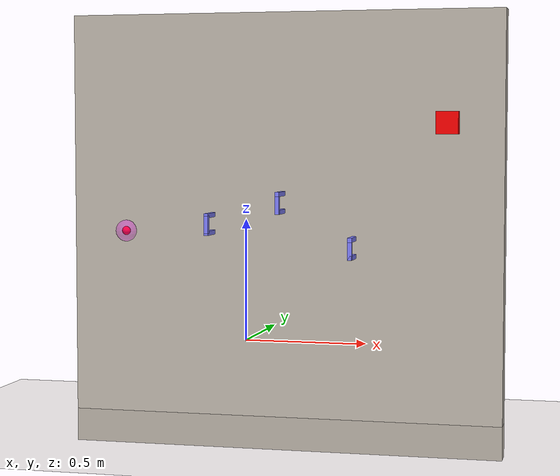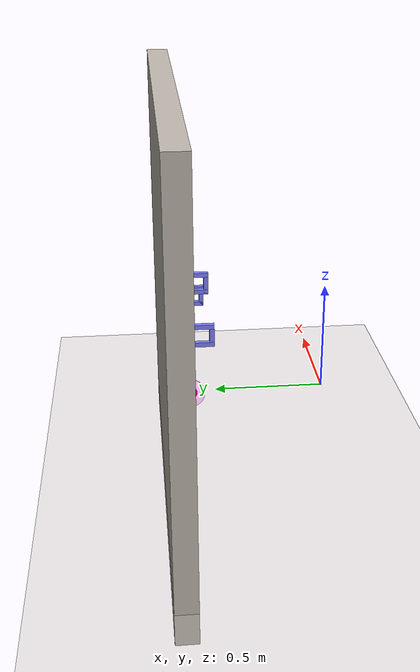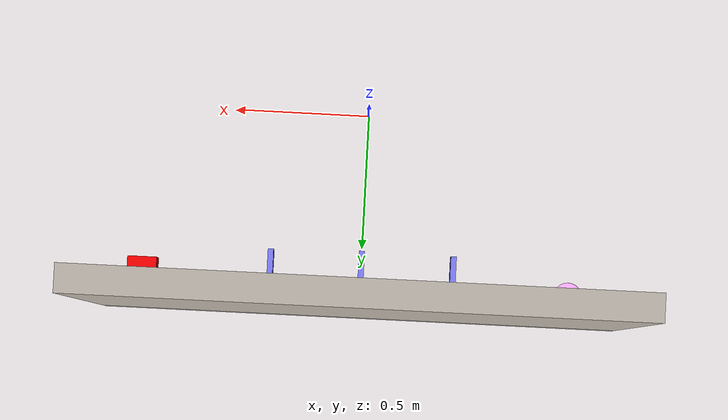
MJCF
<mujoco model="threading_scene">
    <compiler angle="radian" meshdir="meshes/" inertiafromgeom="true"/>
    <default>
        <default class="visual">
            <geom contype="0" conaffinity="0" group="2"/>
        </default>
    </default>
    <include file="materials.xml"/>
    <include file="cc_sphere.xml"/>
    <include file="floor.xml"/>
    <include file="threading_obstacles.xml"/>
</mujoco>

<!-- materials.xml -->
<mujocoinclude>
    <asset>
        <texture file="textures/light-wood.png" type="2d" name="tex-light-wood"/>
        <texture file="textures/dark-wood.png" type="2d" name="tex-dark-wood"/>
        <texture file="textures/metal.png" type="2d" name="tex-metal"/>
        <texture file="textures/cream-plaster.png" type="2d" name="tex-cream-plaster"/>
        <texture file="textures/grass.png" type="2d" name="tex-grass"/>
        <material name="light-wood" reflectance="0" texrepeat="15 15" texture="tex-light-wood" texuniform="true"/>
        <material name="dark-wood" reflectance="0" texrepeat="5 5" texture="tex-dark-wood" texuniform="true"/>
        <material name="metal" reflectance="0" texrepeat="5 5" texture="tex-metal" texuniform="true"/>
        <material name="cream-plaster" reflectance="0" texrepeat="5 5" texture="tex-cream-plaster" texuniform="true"/>
        <material name="grass" reflectance="0" texrepeat="0.2 0.2" texture="tex-grass" texuniform="true"/>
    </asset>
</mujocoinclude>

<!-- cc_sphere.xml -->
<mujoco model="cc_sphere">
    <worldbody>
        <body pos="0 0 0" name="cc_sphere">
            <!-- To get the most precise results, the size here should be half of the resolution of the voxelgrid -->
            <geom type="sphere" name="cc_sphere" size="0.005" rgba="1 1 1 0.1"/>
            <joint type="free" name="cc_sphere" damping="0.1"/>
        </body>
    </worldbody>
</mujoco>

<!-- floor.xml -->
<mujoco model="floor">
    <worldbody>
        <body pos="0 0 -0.445" name="floor">
            <geom type="plane" name="floor" size="50 50 0.1"  material="cream-plaster"/>
        </body>
    </worldbody>
</mujoco>

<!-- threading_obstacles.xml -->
<mujoco model="obstacles">
    <worldbody>
        <body name="obstacles" pos="0 0.7 -0.6" euler="0 0 4.7123">
            <body name="wall">
                <geom type="box" name="wall" size="0.05 1 1" pos="0 0 1" material="cream-plaster"/>
            </body>
            <light mode="fixed" pos="0.3 0.2 1.7" dir="-0.25 0.1 -1" diffuse="0.61 0.61 0.6" castshadow="false"/>
            <light mode="fixed" pos="0.3 -0.2 1.7" dir="-0.25 -0.1 -1" diffuse="0.61 0.61 0.6" castshadow="false"/>
            <body name="attach1" pos="0.05 0.75 1.5">
                <geom name="attach1" size="0.02 0.02 0.02" rgba="1.0 0 0 1"/>
                <body name="cover">
                    <geom name="cover" class="visual" type="box" size="0.05 0.05 0.05" rgba="1 0 0 1"/>
                </body>
            </body>
            <body name="attach2" pos="0.05 -0.75 1">
                <geom name="attach2" type="sphere" size="0.02" rgba="1.0 0 0 1"/>
                <body name="goal">
                    <geom name="goal" class="visual" type="sphere" size="0.05" rgba="1 0 1 0.3"/>
                </body>
            </body>
            <body name="loop1" pos="0.07 0.33 0.9">
                <geom type="box" name="loop1_bottom" pos="0.04 0 0" size="0.06 0.01 0.01" rgba="0.5 0.5 1.0 1"/>
                <geom type="box" name="loop1_front" pos="0.09 0 0.03" size="0.01 0.01 0.04" rgba="0.5 0.5 1.0 1"/>
                <geom type="box" name="loop1_top" pos="0.04 0 0.08" size="0.06 0.01 0.01" rgba="0.5 0.5 1.0 1"/>
            </body>
            <body name="loop2" pos="0.07 0 1.1">
                <geom type="box" name="loop2_bottom" pos="0.04 0 0" size="0.06 0.01 0.01" rgba="0.5 0.5 1.0 1"/>
                <geom type="box" name="loop2_front" pos="0.09 0 0.03" size="0.01 0.01 0.04" rgba="0.5 0.5 1.0 1"/>
                <geom type="box" name="loop2_top" pos="0.04 0 0.08" size="0.06 0.01 0.01" rgba="0.5 0.5 1.0 1"/>
            </body>
            <body name="loop3" pos="0.07 -0.33 1">
                <geom type="box" name="loop3_bottom" pos="0.04 0 0" size="0.06 0.01 0.01" rgba="0.5 0.5 1.0 1"/>
                <geom type="box" name="loop3_front" pos="0.09 0 0.04" size="0.01 0.01 0.04" rgba="0.5 0.5 1.0 1"/>
                <geom type="box" name="loop3_top" pos="0.04 0 0.08" size="0.06 0.01 0.01" rgba="0.5 0.5 1.0 1"/>
            </body>
        </body>
    </worldbody>
</mujoco>
